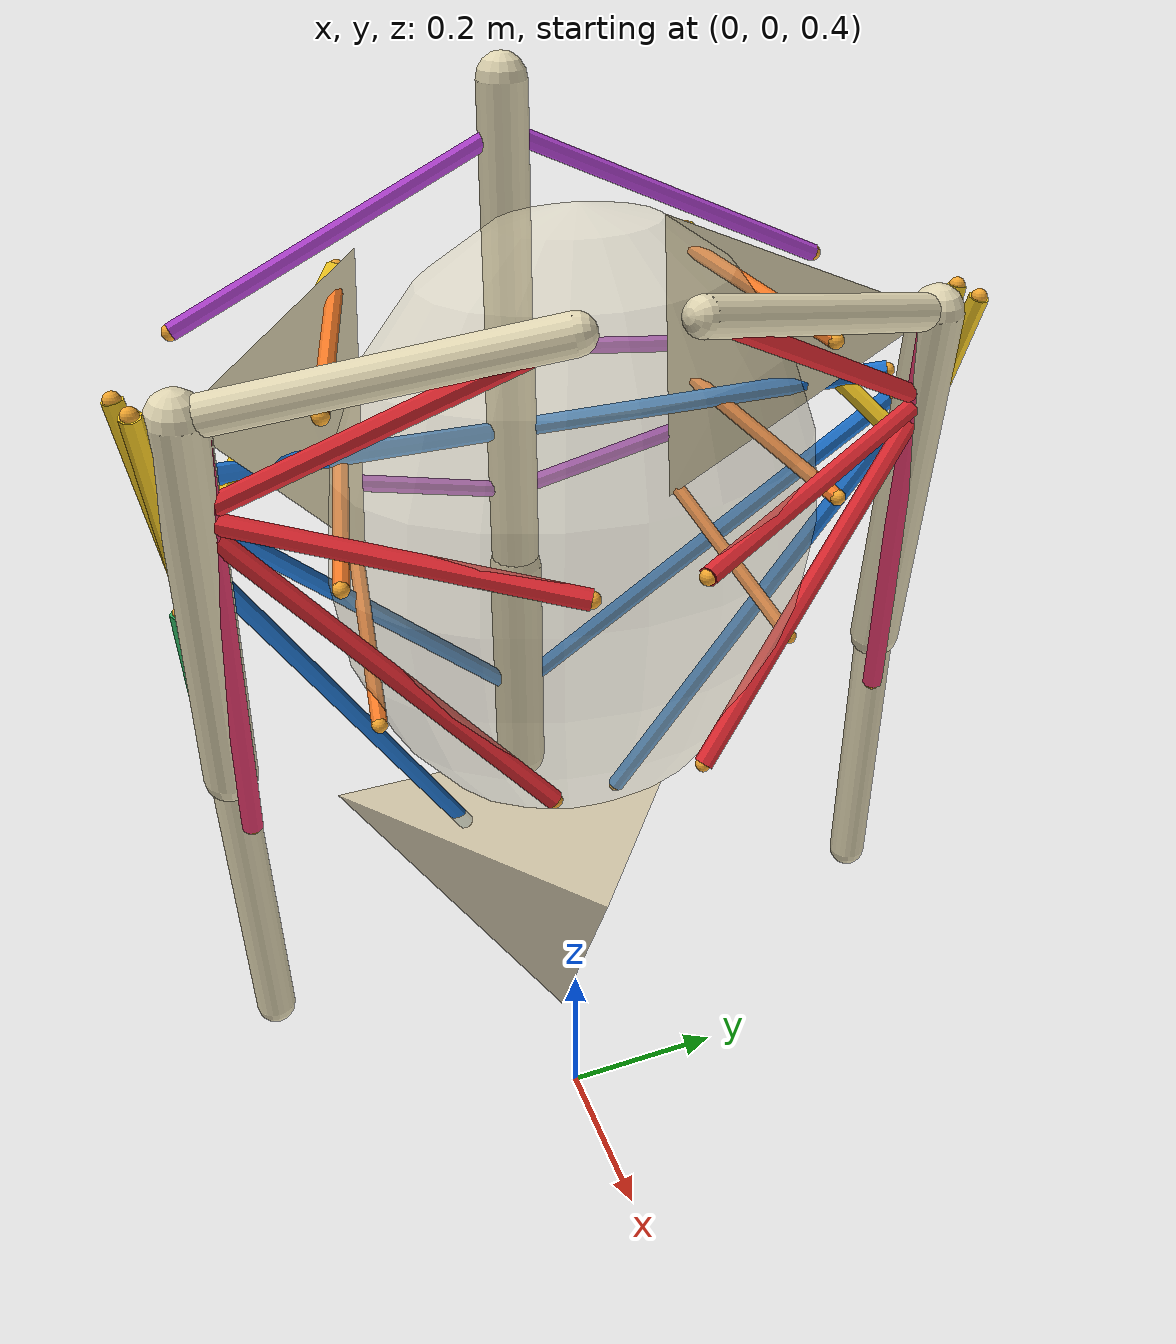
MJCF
<mujoco model="upper_body_structure">
  <compiler angle="radian"/>
  <option timestep="0.001" integrator="implicitfast" gravity="0 0 -9.81"/>

  <visual>
    <headlight ambient="0.35 0.35 0.35" diffuse="0.8 0.8 0.8"/>
    <rgba haze="0.15 0.15 0.18 1"/>
    <global azimuth="135" elevation="-12"/>
  </visual>

  <asset>
    <!-- Flat triangular scapulae, viewed from either the front or back. -->
    <mesh name="left_scapula_mesh"
          vertex="-0.17 0.16 1.49  0.03 0.36 1.43  -0.17 0.18 1.17
                  -0.103 0.233 1.363"
          face="0 1 3  1 2 3  2 0 3"/>
    <mesh name="right_scapula_mesh"
          vertex="-0.20 0.20 0.06  0 0 0  -0.20 0.18 -0.26
                  -0.133 0.127 -0.067"
          face="0 3 1  1 3 2  2 3 0"/>
    <mesh name="pelvis_mesh"
          vertex="-0.20 0.24 0.82  -0.20 -0.24 0.82
                  0.10 0 0.82  -0.05 0 0.50"
          face="0 1 2  0 3 1  1 3 2  2 3 0"/>
    <material name="bone" rgba="0.88 0.84 0.70 1"/>
    <material name="joint_marker" rgba="0.95 0.65 0.18 1"/>
  </asset>

  <default>
    <geom contype="0" conaffinity="0" group="1" material="bone"/>
    <site type="sphere" size="0.008" rgba="0.95 0.65 0.18 1" group="2"/>
  </default>

  <worldbody>
    <light name="key_light" pos="1 -1 3" dir="-0.3 0.3 -1"/>
    <camera name="front" pos="2.8 0 1.20" xyaxes="0 1 0 -0.1 0 1"/>
    <camera name="back" pos="-2.8 0 1.20" xyaxes="0 -1 0 0.1 0 1"/>

    <body name="upper_body">
      <!-- Axial skeleton: one ellipsoid rib cage and a three-part spine. -->
      <body name="rib_cage">
        <geom name="rib_cage_bone" type="ellipsoid" pos="0 0 1.24"
              size="0.18 0.25 0.32" rgba="0.88 0.84 0.70 0.42"/>

        <!-- Pectoralis origins: clavicular, central chest and lower chest. -->
        <site name="left_pectoralis_upper_origin" pos="0.14 0.055 1.50"/>
        <site name="left_pectoralis_middle_origin" pos="0.18 0.055 1.28"/>
        <site name="left_pectoralis_lower_origin" pos="0.15 0.080 1.04"/>
        <site name="right_pectoralis_upper_origin" pos="0.14 -0.055 1.50"/>
        <site name="right_pectoralis_middle_origin" pos="0.18 -0.055 1.28"/>
        <site name="right_pectoralis_lower_origin" pos="0.15 -0.080 1.04"/>

        <!-- Serratus origins at the upper, middle and lower flanks. -->
        <site name="left_serratus_upper_origin" pos="0.04 0.245 1.42"/>
        <site name="left_serratus_middle_origin" pos="0.07 0.250 1.27"/>
        <site name="left_serratus_lower_origin" pos="0.05 0.225 1.10"/>
        <site name="right_serratus_upper_origin" pos="0.04 -0.245 1.42"/>
        <site name="right_serratus_middle_origin" pos="0.07 -0.250 1.27"/>
        <site name="right_serratus_lower_origin" pos="0.05 -0.225 1.10"/>

        <!-- The rib cage connects only to the two clavicles. -->
        <site name="left_sternoclavicular_joint" pos="0.14 0.055 1.50"
              size="0.014"/>
        <site name="right_sternoclavicular_joint" pos="0.14 -0.055 1.50"
              size="0.014"/>
      </body>

      <body name="spine_upper">
        <geom name="spine_upper_bone" type="capsule"
              fromto="-0.20 0 1.62 -0.20 0 1.37" size="0.025"/>
        <site name="left_trapezius_upper_origin" pos="-0.20 0.015 1.57"/>
        <site name="right_trapezius_upper_origin" pos="-0.20 -0.015 1.57"/>
      </body>
      <body name="spine_middle">
        <geom name="spine_middle_bone" type="capsule"
              fromto="-0.20 0 1.37 -0.20 0 1.10" size="0.027"/>
        <site name="left_trapezius_middle_origin" pos="-0.20 0.015 1.36"/>
        <site name="right_trapezius_middle_origin" pos="-0.20 -0.015 1.36"/>
        <site name="left_trapezius_lower_origin" pos="-0.20 0.015 1.20"/>
        <site name="right_trapezius_lower_origin" pos="-0.20 -0.015 1.20"/>
        <site name="left_latissimus_upper_origin" pos="-0.20 0.020 1.27"/>
        <site name="right_latissimus_upper_origin" pos="-0.20 -0.020 1.27"/>
      </body>
      <body name="spine_lower">
        <geom name="spine_lower_bone" type="capsule"
              fromto="-0.20 0 1.10 -0.20 0 0.82" size="0.030"/>
        <site name="left_latissimus_middle_origin" pos="-0.20 0.020 0.94"/>
        <site name="right_latissimus_middle_origin" pos="-0.20 -0.020 0.94"/>
      </body>
      <body name="pelvis">
        <geom name="pelvis_bone" type="mesh" mesh="pelvis_mesh"
              rgba="0.84 0.78 0.63 0.78"/>
        <site name="spine_pelvis_joint" pos="-0.20 0 0.82" size="0.016"/>
        <site name="left_latissimus_lower_origin" pos="-0.12 0.10 0.80"/>
        <site name="right_latissimus_lower_origin" pos="-0.12 -0.10 0.80"/>
      </body>

      <!-- Left shoulder girdle and arm. -->
      <body name="left_clavicle">
        <geom name="left_clavicle_bone" type="capsule"
              fromto="0.14 0.055 1.50 0.03 0.36 1.43" size="0.018"/>
        <site name="left_acromioclavicular_joint" pos="0.03 0.36 1.43"
              size="0.014"/>
        <site name="left_biceps_origin" pos="0.035 0.345 1.43"/>
        <site name="left_deltoid_anterior_origin" pos="0.045 0.395 1.445"/>
      </body>
      <body name="left_scapula">
        <geom name="left_scapula_bone" type="mesh" mesh="left_scapula_mesh"/>
        <site name="left_glenohumeral_joint" pos="0.03 0.36 1.43"
              size="0.016"/>
        <site name="left_serratus_upper_insertion" pos="-0.175 0.18 1.46"/>
        <site name="left_serratus_middle_insertion" pos="-0.178 0.19 1.32"/>
        <site name="left_serratus_lower_insertion" pos="-0.174 0.19 1.18"/>
        <site name="left_trapezius_upper_insertion" pos="-0.176 0.34 1.43"/>
        <site name="left_trapezius_middle_insertion" pos="-0.178 0.27 1.34"/>
        <site name="left_trapezius_lower_insertion" pos="-0.176 0.19 1.25"/>
        <site name="left_deltoid_lateral_origin" pos="-0.005 0.405 1.44"/>
        <site name="left_deltoid_posterior_origin" pos="-0.165 0.18 1.475"/>
      </body>
      <body name="left_humerus">
        <geom name="left_humerus_bone" type="capsule"
              fromto="0.03 0.36 1.43 0 0.37 1.04" size="0.027"/>
        <site name="left_elbow_joint" pos="0 0.37 1.04" size="0.016"/>
        <site name="left_pectoralis_insertion" pos="0.025 0.365 1.34"/>
        <site name="left_latissimus_upper_insertion" pos="-0.030 0.355 1.35"/>
        <site name="left_latissimus_middle_insertion" pos="-0.030 0.365 1.32"/>
        <site name="left_latissimus_lower_insertion" pos="-0.030 0.375 1.29"/>
        <site name="left_triceps_origin" pos="-0.025 0.385 1.22"/>
        <site name="left_deltoid_insertion" pos="0 0.380 1.27"/>
      </body>
      <body name="left_ulna">
        <geom name="left_ulna_bone" type="capsule"
              fromto="0 0.37 1.04 0.015 0.37 0.72" size="0.021"/>
        <site name="left_biceps_insertion" pos="0.025 0.360 0.99"/>
        <site name="left_triceps_insertion" pos="-0.020 0.380 1.02"/>
      </body>

      <!-- Right shoulder girdle and arm.  Positions below the scapula are
           local to the shared clavicle/scapula/humerus shoulder point. -->
      <body name="right_clavicle">
        <geom name="right_clavicle_bone" type="capsule"
              fromto="0.14 -0.055 1.50 0.03 -0.36 1.43" size="0.018"/>
        <site name="right_acromioclavicular_joint" pos="0.03 -0.36 1.43"
              size="0.014"/>
        <site name="right_biceps_origin" pos="0.035 -0.345 1.43"/>
        <site name="right_deltoid_anterior_origin" pos="0.045 -0.395 1.445"/>
        <body name="right_scapula" pos="0.03 -0.36 1.43">
          <joint name="right_scapula_rotation" type="hinge" axis="-1 0 0"
                 range="-0.35 0.20" damping="0.20"/>
          <inertial pos="-0.13 0.12 -0.07" mass="0.20"
                    diaginertia="0.0030 0.0020 0.0015"/>
          <geom name="right_scapula_bone" type="mesh"
                mesh="right_scapula_mesh"/>
          <site name="right_glenohumeral_joint" pos="0 0 0" size="0.016"/>
          <site name="right_serratus_upper_insertion" pos="-0.205 0.18 0.03"/>
          <site name="right_serratus_middle_insertion" pos="-0.208 0.17 -0.11"/>
          <site name="right_serratus_lower_insertion" pos="-0.204 0.17 -0.25"/>
          <site name="right_trapezius_upper_insertion" pos="-0.206 0.02 0"/>
          <site name="right_trapezius_middle_insertion" pos="-0.208 0.09 -0.09"/>
          <site name="right_trapezius_lower_insertion" pos="-0.206 0.17 -0.18"/>
          <site name="right_deltoid_lateral_origin" pos="-0.035 -0.045 0.01"/>
          <site name="right_deltoid_posterior_origin" pos="-0.195 0.18 0.045"/>

          <body name="right_humerus">
            <joint name="right_shoulder_abduction" type="hinge" axis="1 0 0"
                   range="-2.95 0.35" damping="0.25"/>
            <joint name="right_shoulder_flexion" type="hinge" axis="0 1 0"
                   range="-1.80 1.80" damping="0.25"/>
            <joint name="right_shoulder_rotation" type="hinge" axis="0 0 1"
                   range="-1.20 1.20" damping="0.20"/>
            <inertial pos="-0.015 -0.005 -0.195" mass="0.90"
                      diaginertia="0.0120 0.0120 0.0012"/>
            <geom name="right_humerus_bone" type="capsule"
                  fromto="0 0 0 -0.03 -0.01 -0.39" size="0.027"/>
            <site name="right_elbow_joint" pos="-0.03 -0.01 -0.39"
                  size="0.016"/>
            <site name="right_pectoralis_insertion" pos="-0.005 -0.005 -0.09"/>
            <site name="right_latissimus_upper_insertion" pos="-0.060 0.005 -0.08"/>
            <site name="right_latissimus_middle_insertion" pos="-0.060 -0.005 -0.11"/>
            <site name="right_latissimus_lower_insertion" pos="-0.060 -0.015 -0.14"/>
            <site name="right_triceps_origin" pos="-0.055 -0.025 -0.21"/>
            <site name="right_deltoid_insertion" pos="-0.030 -0.020 -0.16"/>

            <body name="right_ulna" pos="-0.03 -0.01 -0.39">
              <joint name="right_elbow" type="hinge" axis="1 0 0"
                     range="-2.40 0" damping="0.18"/>
              <inertial pos="0.008 0 -0.16" mass="0.65"
                        diaginertia="0.0060 0.0060 0.0007"/>
              <geom name="right_ulna_bone" type="capsule"
                    fromto="0 0 0 0.015 0 -0.32" size="0.021"/>
              <site name="right_biceps_insertion" pos="0.025 0.010 -0.05"/>
              <site name="right_triceps_insertion" pos="-0.020 -0.010 -0.02"/>
            </body>
          </body>
        </body>
      </body>
    </body>
  </worldbody>

  <tendon>
    <!-- Pectoralis major: upper / middle / lower, left and right. -->
    <spatial name="left_pectoralis_upper" width="0.010" rgba="0.85 0.15 0.18 1"><site site="left_pectoralis_upper_origin"/><site site="left_pectoralis_insertion"/></spatial>
    <spatial name="left_pectoralis_middle" width="0.010" rgba="0.85 0.15 0.18 1"><site site="left_pectoralis_middle_origin"/><site site="left_pectoralis_insertion"/></spatial>
    <spatial name="left_pectoralis_lower" width="0.010" rgba="0.85 0.15 0.18 1"><site site="left_pectoralis_lower_origin"/><site site="left_pectoralis_insertion"/></spatial>
    <spatial name="right_pectoralis_upper" width="0.010" rgba="0.85 0.15 0.18 1"><site site="right_pectoralis_upper_origin"/><site site="right_pectoralis_insertion"/></spatial>
    <spatial name="right_pectoralis_middle" width="0.010" rgba="0.85 0.15 0.18 1"><site site="right_pectoralis_middle_origin"/><site site="right_pectoralis_insertion"/></spatial>
    <spatial name="right_pectoralis_lower" width="0.010" rgba="0.85 0.15 0.18 1"><site site="right_pectoralis_lower_origin"/><site site="right_pectoralis_insertion"/></spatial>

    <!-- Deltoid: anterior / lateral / posterior, sharing one humeral insertion. -->
    <spatial name="left_deltoid_anterior" width="0.010" rgba="0.95 0.78 0.12 1"><site site="left_deltoid_anterior_origin"/><site site="left_deltoid_insertion"/></spatial>
    <spatial name="left_deltoid_lateral" width="0.010" rgba="0.95 0.78 0.12 1"><site site="left_deltoid_lateral_origin"/><site site="left_deltoid_insertion"/></spatial>
    <spatial name="left_deltoid_posterior" width="0.010" rgba="0.95 0.78 0.12 1"><site site="left_deltoid_posterior_origin"/><site site="left_deltoid_insertion"/></spatial>
    <spatial name="right_deltoid_anterior" width="0.010" rgba="0.95 0.78 0.12 1"><site site="right_deltoid_anterior_origin"/><site site="right_deltoid_insertion"/></spatial>
    <spatial name="right_deltoid_lateral" width="0.010" rgba="0.95 0.78 0.12 1"><site site="right_deltoid_lateral_origin"/><site site="right_deltoid_insertion"/></spatial>
    <spatial name="right_deltoid_posterior" width="0.010" rgba="0.95 0.78 0.12 1"><site site="right_deltoid_posterior_origin"/><site site="right_deltoid_insertion"/></spatial>

    <!-- Serratus anterior: upper / middle / lower. -->
    <spatial name="left_serratus_upper" width="0.008" rgba="0.96 0.48 0.15 1"><site site="left_serratus_upper_origin"/><site site="left_serratus_upper_insertion"/></spatial>
    <spatial name="left_serratus_middle" width="0.008" rgba="0.96 0.48 0.15 1"><site site="left_serratus_middle_origin"/><site site="left_serratus_middle_insertion"/></spatial>
    <spatial name="left_serratus_lower" width="0.008" rgba="0.96 0.48 0.15 1"><site site="left_serratus_lower_origin"/><site site="left_serratus_lower_insertion"/></spatial>
    <spatial name="right_serratus_upper" width="0.008" rgba="0.96 0.48 0.15 1"><site site="right_serratus_upper_origin"/><site site="right_serratus_upper_insertion"/></spatial>
    <spatial name="right_serratus_middle" width="0.008" rgba="0.96 0.48 0.15 1"><site site="right_serratus_middle_origin"/><site site="right_serratus_middle_insertion"/></spatial>
    <spatial name="right_serratus_lower" width="0.008" rgba="0.96 0.48 0.15 1"><site site="right_serratus_lower_origin"/><site site="right_serratus_lower_insertion"/></spatial>

    <!-- Trapezius: upper / middle / lower. -->
    <spatial name="left_trapezius_upper" width="0.009" rgba="0.66 0.24 0.78 1"><site site="left_trapezius_upper_origin"/><site site="left_trapezius_upper_insertion"/></spatial>
    <spatial name="left_trapezius_middle" width="0.009" rgba="0.66 0.24 0.78 1"><site site="left_trapezius_middle_origin"/><site site="left_trapezius_middle_insertion"/></spatial>
    <spatial name="left_trapezius_lower" width="0.009" rgba="0.66 0.24 0.78 1"><site site="left_trapezius_lower_origin"/><site site="left_trapezius_lower_insertion"/></spatial>
    <spatial name="right_trapezius_upper" width="0.009" rgba="0.66 0.24 0.78 1"><site site="right_trapezius_upper_origin"/><site site="right_trapezius_upper_insertion"/></spatial>
    <spatial name="right_trapezius_middle" width="0.009" rgba="0.66 0.24 0.78 1"><site site="right_trapezius_middle_origin"/><site site="right_trapezius_middle_insertion"/></spatial>
    <spatial name="right_trapezius_lower" width="0.009" rgba="0.66 0.24 0.78 1"><site site="right_trapezius_lower_origin"/><site site="right_trapezius_lower_insertion"/></spatial>

    <!-- Latissimus dorsi: upper / middle / lower. -->
    <spatial name="left_latissimus_upper" width="0.010" rgba="0.12 0.46 0.82 1"><site site="left_latissimus_upper_origin"/><site site="left_latissimus_upper_insertion"/></spatial>
    <spatial name="left_latissimus_middle" width="0.010" rgba="0.12 0.46 0.82 1"><site site="left_latissimus_middle_origin"/><site site="left_latissimus_middle_insertion"/></spatial>
    <spatial name="left_latissimus_lower" width="0.010" rgba="0.12 0.46 0.82 1"><site site="left_latissimus_lower_origin"/><site site="left_latissimus_lower_insertion"/></spatial>
    <spatial name="right_latissimus_upper" width="0.010" rgba="0.12 0.46 0.82 1"><site site="right_latissimus_upper_origin"/><site site="right_latissimus_upper_insertion"/></spatial>
    <spatial name="right_latissimus_middle" width="0.010" rgba="0.12 0.46 0.82 1"><site site="right_latissimus_middle_origin"/><site site="right_latissimus_middle_insertion"/></spatial>
    <spatial name="right_latissimus_lower" width="0.010" rgba="0.12 0.46 0.82 1"><site site="right_latissimus_lower_origin"/><site site="right_latissimus_lower_insertion"/></spatial>

    <!-- Biceps and triceps: one path of each per side. -->
    <spatial name="left_biceps" width="0.011" rgba="0.90 0.22 0.42 1"><site site="left_biceps_origin"/><site site="left_biceps_insertion"/></spatial>
    <spatial name="right_biceps" width="0.011" rgba="0.90 0.22 0.42 1"><site site="right_biceps_origin"/><site site="right_biceps_insertion"/></spatial>
    <spatial name="left_triceps" width="0.011" rgba="0.18 0.70 0.38 1"><site site="left_triceps_origin"/><site site="left_triceps_insertion"/></spatial>
    <spatial name="right_triceps" width="0.011" rgba="0.18 0.70 0.38 1"><site site="right_triceps_origin"/><site site="right_triceps_insertion"/></spatial>
  </tendon>

  <actuator>
    <motor name="right_pectoralis_upper_actuator" tendon="right_pectoralis_upper"
           ctrllimited="true" ctrlrange="0 150" forcelimited="true" forcerange="0 150"/>
    <motor name="right_pectoralis_middle_actuator" tendon="right_pectoralis_middle"
           ctrllimited="true" ctrlrange="0 150" forcelimited="true" forcerange="0 150"/>
    <motor name="right_pectoralis_lower_actuator" tendon="right_pectoralis_lower"
           ctrllimited="true" ctrlrange="0 150" forcelimited="true" forcerange="0 150"/>

    <motor name="right_deltoid_anterior_actuator" tendon="right_deltoid_anterior"
           ctrllimited="true" ctrlrange="0 200" forcelimited="true" forcerange="0 200"/>
    <motor name="right_deltoid_lateral_actuator" tendon="right_deltoid_lateral"
           ctrllimited="true" ctrlrange="0 200" forcelimited="true" forcerange="0 200"/>
    <motor name="right_deltoid_posterior_actuator" tendon="right_deltoid_posterior"
           ctrllimited="true" ctrlrange="0 200" forcelimited="true" forcerange="0 200"/>

    <motor name="right_serratus_upper_actuator" tendon="right_serratus_upper"
           ctrllimited="true" ctrlrange="0 100" forcelimited="true" forcerange="0 100"/>
    <motor name="right_serratus_middle_actuator" tendon="right_serratus_middle"
           ctrllimited="true" ctrlrange="0 100" forcelimited="true" forcerange="0 100"/>
    <motor name="right_serratus_lower_actuator" tendon="right_serratus_lower"
           ctrllimited="true" ctrlrange="0 100" forcelimited="true" forcerange="0 100"/>

    <motor name="right_trapezius_upper_actuator" tendon="right_trapezius_upper"
           ctrllimited="true" ctrlrange="0 100" forcelimited="true" forcerange="0 100"/>
    <motor name="right_trapezius_middle_actuator" tendon="right_trapezius_middle"
           ctrllimited="true" ctrlrange="0 100" forcelimited="true" forcerange="0 100"/>
    <motor name="right_trapezius_lower_actuator" tendon="right_trapezius_lower"
           ctrllimited="true" ctrlrange="0 100" forcelimited="true" forcerange="0 100"/>

    <motor name="right_latissimus_upper_actuator" tendon="right_latissimus_upper"
           ctrllimited="true" ctrlrange="0 120" forcelimited="true" forcerange="0 120"/>
    <motor name="right_latissimus_middle_actuator" tendon="right_latissimus_middle"
           ctrllimited="true" ctrlrange="0 120" forcelimited="true" forcerange="0 120"/>
    <motor name="right_latissimus_lower_actuator" tendon="right_latissimus_lower"
           ctrllimited="true" ctrlrange="0 120" forcelimited="true" forcerange="0 120"/>

    <motor name="right_biceps_actuator" tendon="right_biceps"
           ctrllimited="true" ctrlrange="0 500" forcelimited="true" forcerange="0 500"/>
    <motor name="right_triceps_actuator" tendon="right_triceps"
           ctrllimited="true" ctrlrange="0 500" forcelimited="true" forcerange="0 500"/>
  </actuator>
</mujoco>
